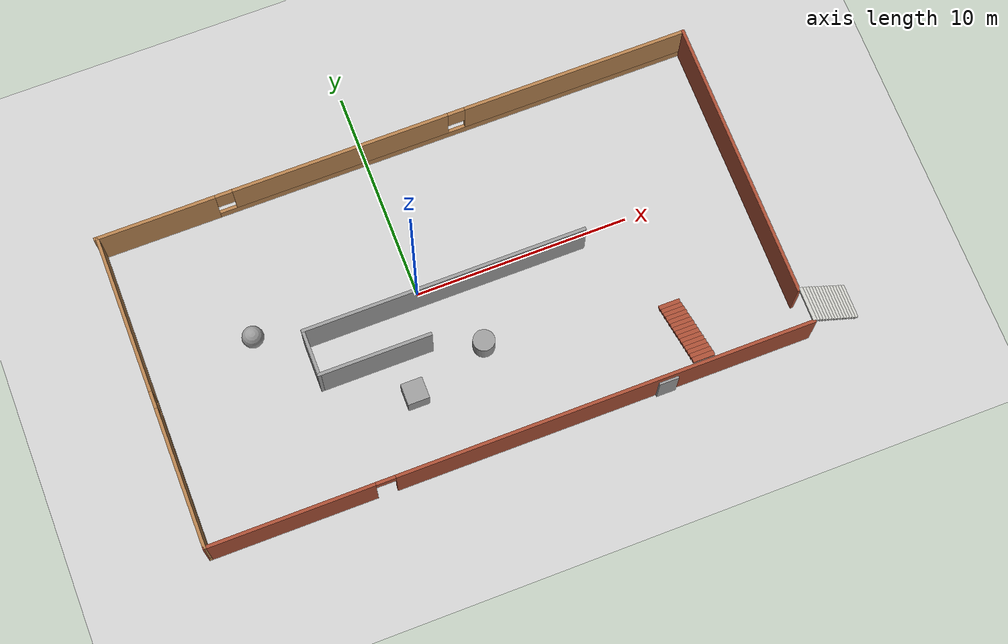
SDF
<sdf version="1.7">
 <world name="default">
  <light name="sun" type="directional">
   <pose>0 0 10 0 -0 0</pose>
   <diffuse>0.8 0.8 0.8 1</diffuse>
   <specular>0.2 0.2 0.2 1</specular>
   <attenuation>
    <range>1000</range>
    <constant>0.9</constant>
    <linear>0.01</linear>
    <quadratic>0.001</quadratic>
   </attenuation>
   <direction>-0.5 0.1 -0.9</direction>
   <spot><inner_angle>0</inner_angle><outer_angle>0</outer_angle><falloff>0</falloff></spot>
  </light>
  <model name="ground_plane">
   <static>1</static>
   <link name="link">
    <collision name="collision">
     <geometry><plane><normal>0 0 1</normal><size>100 100</size></plane></geometry>
     <surface><friction><ode><mu>100</mu><mu2>50</mu2></ode></friction></surface>
    </collision>
    <visual name="visual">
     <cast_shadows>0</cast_shadows>
     <geometry><plane><normal>0 0 1</normal><size>100 100</size></plane></geometry>
     <material>
      <script><uri>file://media/materials/scripts/gazebo.material</uri><name>Gazebo/Grey</name></script>
     </material>
    </visual>
   </link>
  </model>
  <gravity>0 0 -9.8</gravity>
  <magnetic_field>6e-06 2.3e-05 -4.2e-05</magnetic_field>
  <atmosphere type="adiabatic"/>
  <physics type="ode">
   <max_step_size>0.001</max_step_size>
   <real_time_factor>1</real_time_factor>
   <real_time_update_rate>1000</real_time_update_rate>
  </physics>
  <scene><ambient>0.4 0.4 0.4 1</ambient><background>0.7 0.7 0.7 1</background><shadows>1</shadows></scene>
  <spherical_coordinates>
   <surface_model>EARTH_WGS84</surface_model>
   <latitude_deg>0</latitude_deg>
   <longitude_deg>0</longitude_deg>
   <elevation>0</elevation>
   <heading_deg>0</heading_deg>
  </spherical_coordinates>
  <model name="unit_cylinder_0">
   <pose>1.90611 -3.30033 0.499998 3e-06 4e-06 -0</pose>
   <link name="link">
    <inertial>
     <mass>1</mass>
     <inertia><ixx>0.145833</ixx><ixy>0</ixy><ixz>0</ixz><iyy>0.145833</iyy><iyz>0</iyz><izz>0.125</izz></inertia>
    </inertial>
    <collision name="collision">
     <geometry><cylinder><radius>0.5</radius><length>1</length></cylinder></geometry>
    </collision>
    <visual name="visual">
     <geometry><cylinder><radius>0.5</radius><length>1</length></cylinder></geometry>
     <material>
      <script><name>Gazebo/Grey</name><uri>file://media/materials/scripts/gazebo.material</uri></script>
     </material>
    </visual>
   </link>
  </model>
  <model name="unit_box_0">
   <pose>-1.71732 -4.38026 0.499995 1e-05 -0 0</pose>
   <link name="link">
    <inertial>
     <mass>1</mass>
     <inertia>
      <ixx>0.166667</ixx>
      <ixy>0</ixy>
      <ixz>0</ixz>
      <iyy>0.166667</iyy>
      <iyz>0</iyz>
      <izz>0.166667</izz>
     </inertia>
    </inertial>
    <collision name="collision"><geometry><box><size>1 1 1</size></box></geometry></collision>
    <visual name="visual">
     <geometry><box><size>1 1 1</size></box></geometry>
     <material>
      <script><name>Gazebo/Grey</name><uri>file://media/materials/scripts/gazebo.material</uri></script>
     </material>
    </visual>
   </link>
  </model>
  <model name="unit_sphere">
   <pose>-7.51234 0.599408 0.5 0 -0 0</pose>
   <link name="link">
    <inertial>
     <mass>1</mass>
     <inertia><ixx>0.1</ixx><ixy>0</ixy><ixz>0</ixz><iyy>0.1</iyy><iyz>0</iyz><izz>0.1</izz></inertia>
    </inertial>
    <collision name="collision"><geometry><sphere><radius>0.5</radius></sphere></geometry></collision>
    <visual name="visual">
     <geometry><sphere><radius>0.5</radius></sphere></geometry>
     <material>
      <script><name>Gazebo/Grey</name><uri>file://media/materials/scripts/gazebo.material</uri></script>
     </material>
    </visual>
   </link>
  </model>
  <light name="user_spot_light_0" type="spot">
   <pose>-110.267 38.8044 1 0 -0 0</pose>
   <diffuse>0.5 0.5 0.5 1</diffuse>
   <specular>0.1 0.1 0.1 1</specular>
   <direction>0 0 -1</direction>
   <attenuation>
    <range>20</range>
    <constant>0.5</constant>
    <linear>0.01</linear>
    <quadratic>0.001</quadratic>
   </attenuation>
   <cast_shadows>0</cast_shadows>
   <spot><inner_angle>0.6</inner_angle><outer_angle>1</outer_angle><falloff>1</falloff></spot>
  </light>
  <light name="user_spot_light_1" type="spot">
   <pose>-17.8773 14.4133 1 0 -0 0</pose>
   <diffuse>0.5 0.5 0.5 1</diffuse>
   <specular>0.1 0.1 0.1 1</specular>
   <direction>0 0 -1</direction>
   <attenuation>
    <range>20</range>
    <constant>0.5</constant>
    <linear>0.01</linear>
    <quadratic>0.001</quadratic>
   </attenuation>
   <cast_shadows>0</cast_shadows>
   <spot><inner_angle>0.6</inner_angle><outer_angle>1</outer_angle><falloff>1</falloff></spot>
  </light>
  <model name="Untitled">
   <pose>1.13 -1.3475 0 0 -0 0</pose>
   <link name="Wall_0">
    <collision name="Wall_0_Collision">
     <geometry><box><size>5.25 0.15 2.5</size></box></geometry>
     <pose>0 0 1.25 0 -0 0</pose>
    </collision>
    <visual name="Wall_0_Visual">
     <pose>0 0 1.25 0 -0 0</pose>
     <geometry><box><size>5.25 0.15 2.5</size></box></geometry>
     <material>
      <script><uri>file://media/materials/scripts/gazebo.material</uri><name>Gazebo/Grey</name></script>
      <ambient>1 1 1 1</ambient>
     </material>
     <meta><layer>0</layer></meta>
    </visual>
    <pose>-4 -1.2725 0 0 -0 3.14159</pose>
   </link>
   <link name="Wall_1">
    <collision name="Wall_1_Collision">
     <geometry><box><size>2.25 0.15 2.5</size></box></geometry>
     <pose>0 0 1.25 0 -0 0</pose>
    </collision>
    <visual name="Wall_1_Visual">
     <pose>0 0 1.25 0 -0 0</pose>
     <geometry><box><size>2.25 0.15 2.5</size></box></geometry>
     <material>
      <script><uri>file://media/materials/scripts/gazebo.material</uri><name>Gazebo/Grey</name></script>
      <ambient>1 1 1 1</ambient>
     </material>
     <meta><layer>0</layer></meta>
    </visual>
    <pose>-6.55 -0.2225 0 0 -0 1.5708</pose>
   </link>
   <link name="Wall_2">
    <collision name="Wall_2_Collision">
     <geometry><box><size>13.25 0.15 2.5</size></box></geometry>
     <pose>0 0 1.25 0 -0 0</pose>
    </collision>
    <visual name="Wall_2_Visual">
     <pose>0 0 1.25 0 -0 0</pose>
     <geometry><box><size>13.25 0.15 2.5</size></box></geometry>
     <material>
      <script><uri>file://media/materials/scripts/gazebo.material</uri><name>Gazebo/Grey</name></script>
      <ambient>1 1 1 1</ambient>
     </material>
     <meta><layer>0</layer></meta>
    </visual>
    <pose>0 0.8275 0 0 -0 0</pose>
   </link>
   <static>1</static>
  </model>
  <model name="Untitled_0">
   <pose>2.66725 -0.66294 0 0 -0 0</pose>
   <link name="Door_1">
    <collision name="Door_1_Collision">
     <geometry><box><size>0.9 0.17 2</size></box></geometry>
     <pose>0 0 1 0 -0 0</pose>
    </collision>
    <visual name="Door_1_Visual">
     <pose>0 0 1 0 -0 0</pose>
     <geometry><box><size>0.9 0.17 2</size></box></geometry>
     <material>
      <script><uri>file://media/materials/scripts/gazebo.material</uri><name>Gazebo/Grey</name></script>
     </material>
    </visual>
    <pose>5.95571 -7.41153 0 0 -0 0</pose>
   </link>
   <link name="Stairs_0">
    <visual name="Stairs_0_Visual_0">
     <pose>7.64009 -3.8131 0.083333 0 -0 0</pose>
     <geometry><box><size>1 0.233333 0.166667</size></box></geometry>
     <material>
      <script><uri>file://media/materials/scripts/gazebo.material</uri><name>Gazebo/Bricks</name></script>
      <ambient>1 1 1 1</ambient>
     </material>
     <meta><layer>0</layer></meta>
    </visual>
    <collision name="Stairs_0_Collision_0">
     <geometry><box><size>1 0.233333 0.166667</size></box></geometry>
     <pose>7.64009 -3.8131 0.083333 0 -0 0</pose>
    </collision>
    <visual name="Stairs_0_Visual_1">
     <pose>7.64009 -4.04643 0.25 0 -0 0</pose>
     <geometry><box><size>1 0.233333 0.166667</size></box></geometry>
     <material>
      <script><uri>file://media/materials/scripts/gazebo.material</uri><name>Gazebo/Bricks</name></script>
      <ambient>1 1 1 1</ambient>
     </material>
     <meta><layer>0</layer></meta>
    </visual>
    <collision name="Stairs_0_Collision_1">
     <geometry><box><size>1 0.233333 0.166667</size></box></geometry>
     <pose>7.64009 -4.04643 0.25 0 -0 0</pose>
    </collision>
    <visual name="Stairs_0_Visual_2">
     <pose>7.64009 -4.27976 0.416667 0 -0 0</pose>
     <geometry><box><size>1 0.233333 0.166667</size></box></geometry>
     <material>
      <script><uri>file://media/materials/scripts/gazebo.material</uri><name>Gazebo/Bricks</name></script>
      <ambient>1 1 1 1</ambient>
     </material>
     <meta><layer>0</layer></meta>
    </visual>
    <collision name="Stairs_0_Collision_2">
     <geometry><box><size>1 0.233333 0.166667</size></box></geometry>
     <pose>7.64009 -4.27976 0.416667 0 -0 0</pose>
    </collision>
    <visual name="Stairs_0_Visual_3">
     <pose>7.64009 -4.51309 0.583333 0 -0 0</pose>
     <geometry><box><size>1 0.233333 0.166667</size></box></geometry>
     <material>
      <script><uri>file://media/materials/scripts/gazebo.material</uri><name>Gazebo/Bricks</name></script>
      <ambient>1 1 1 1</ambient>
     </material>
     <meta><layer>0</layer></meta>
    </visual>
    <collision name="Stairs_0_Collision_3">
     <geometry><box><size>1 0.233333 0.166667</size></box></geometry>
     <pose>7.64009 -4.51309 0.583333 0 -0 0</pose>
    </collision>
    <visual name="Stairs_0_Visual_4">
     <pose>7.64009 -4.74643 0.75 0 -0 0</pose>
     <geometry><box><size>1 0.233333 0.166667</size></box></geometry>
     <material>
      <script><uri>file://media/materials/scripts/gazebo.material</uri><name>Gazebo/Bricks</name></script>
      <ambient>1 1 1 1</ambient>
     </material>
     <meta><layer>0</layer></meta>
    </visual>
    <collision name="Stairs_0_Collision_4">
     <geometry><box><size>1 0.233333 0.166667</size></box></geometry>
     <pose>7.64009 -4.74643 0.75 0 -0 0</pose>
    </collision>
    <visual name="Stairs_0_Visual_5">
     <pose>7.64009 -4.97976 0.916667 0 -0 0</pose>
     <geometry><box><size>1 0.233333 0.166667</size></box></geometry>
     <material>
      <script><uri>file://media/materials/scripts/gazebo.material</uri><name>Gazebo/Bricks</name></script>
      <ambient>1 1 1 1</ambient>
     </material>
     <meta><layer>0</layer></meta>
    </visual>
    <collision name="Stairs_0_Collision_5">
     <geometry><box><size>1 0.233333 0.166667</size></box></geometry>
     <pose>7.64009 -4.97976 0.916667 0 -0 0</pose>
    </collision>
    <visual name="Stairs_0_Visual_6">
     <pose>7.64009 -5.2131 1.08333 0 -0 0</pose>
     <geometry><box><size>1 0.233333 0.166667</size></box></geometry>
     <material>
      <script><uri>file://media/materials/scripts/gazebo.material</uri><name>Gazebo/Bricks</name></script>
      <ambient>1 1 1 1</ambient>
     </material>
     <meta><layer>0</layer></meta>
    </visual>
    <collision name="Stairs_0_Collision_6">
     <geometry><box><size>1 0.233333 0.166667</size></box></geometry>
     <pose>7.64009 -5.2131 1.08333 0 -0 0</pose>
    </collision>
    <visual name="Stairs_0_Visual_7">
     <pose>7.64009 -5.44643 1.25 0 -0 0</pose>
     <geometry><box><size>1 0.233333 0.166667</size></box></geometry>
     <material>
      <script><uri>file://media/materials/scripts/gazebo.material</uri><name>Gazebo/Bricks</name></script>
      <ambient>1 1 1 1</ambient>
     </material>
     <meta><layer>0</layer></meta>
    </visual>
    <collision name="Stairs_0_Collision_7">
     <geometry><box><size>1 0.233333 0.166667</size></box></geometry>
     <pose>7.64009 -5.44643 1.25 0 -0 0</pose>
    </collision>
    <visual name="Stairs_0_Visual_8">
     <pose>7.64009 -5.67976 1.41667 0 -0 0</pose>
     <geometry><box><size>1 0.233333 0.166667</size></box></geometry>
     <material>
      <script><uri>file://media/materials/scripts/gazebo.material</uri><name>Gazebo/Bricks</name></script>
      <ambient>1 1 1 1</ambient>
     </material>
     <meta><layer>0</layer></meta>
    </visual>
    <collision name="Stairs_0_Collision_8">
     <geometry><box><size>1 0.233333 0.166667</size></box></geometry>
     <pose>7.64009 -5.67976 1.41667 0 -0 0</pose>
    </collision>
    <visual name="Stairs_0_Visual_9">
     <pose>7.64009 -5.9131 1.58333 0 -0 0</pose>
     <geometry><box><size>1 0.233333 0.166667</size></box></geometry>
     <material>
      <script><uri>file://media/materials/scripts/gazebo.material</uri><name>Gazebo/Bricks</name></script>
      <ambient>1 1 1 1</ambient>
     </material>
     <meta><layer>0</layer></meta>
    </visual>
    <collision name="Stairs_0_Collision_9">
     <geometry><box><size>1 0.233333 0.166667</size></box></geometry>
     <pose>7.64009 -5.9131 1.58333 0 -0 0</pose>
    </collision>
    <visual name="Stairs_0_Visual_10">
     <pose>7.64009 -6.14643 1.75 0 -0 0</pose>
     <geometry><box><size>1 0.233333 0.166667</size></box></geometry>
     <material>
      <script><uri>file://media/materials/scripts/gazebo.material</uri><name>Gazebo/Bricks</name></script>
      <ambient>1 1 1 1</ambient>
     </material>
     <meta><layer>0</layer></meta>
    </visual>
    <collision name="Stairs_0_Collision_10">
     <geometry><box><size>1 0.233333 0.166667</size></box></geometry>
     <pose>7.64009 -6.14643 1.75 0 -0 0</pose>
    </collision>
    <visual name="Stairs_0_Visual_11">
     <pose>7.64009 -6.37976 1.91667 0 -0 0</pose>
     <geometry><box><size>1 0.233333 0.166667</size></box></geometry>
     <material>
      <script><uri>file://media/materials/scripts/gazebo.material</uri><name>Gazebo/Bricks</name></script>
      <ambient>1 1 1 1</ambient>
     </material>
     <meta><layer>0</layer></meta>
    </visual>
    <collision name="Stairs_0_Collision_11">
     <geometry><box><size>1 0.233333 0.166667</size></box></geometry>
     <pose>7.64009 -6.37976 1.91667 0 -0 0</pose>
    </collision>
    <visual name="Stairs_0_Visual_12">
     <pose>7.64009 -6.6131 2.08333 0 -0 0</pose>
     <geometry><box><size>1 0.233333 0.166667</size></box></geometry>
     <material>
      <script><uri>file://media/materials/scripts/gazebo.material</uri><name>Gazebo/Bricks</name></script>
      <ambient>1 1 1 1</ambient>
     </material>
     <meta><layer>0</layer></meta>
    </visual>
    <collision name="Stairs_0_Collision_12">
     <geometry><box><size>1 0.233333 0.166667</size></box></geometry>
     <pose>7.64009 -6.6131 2.08333 0 -0 0</pose>
    </collision>
    <visual name="Stairs_0_Visual_13">
     <pose>7.64009 -6.84643 2.25 0 -0 0</pose>
     <geometry><box><size>1 0.233333 0.166667</size></box></geometry>
     <material>
      <script><uri>file://media/materials/scripts/gazebo.material</uri><name>Gazebo/Bricks</name></script>
      <ambient>1 1 1 1</ambient>
     </material>
     <meta><layer>0</layer></meta>
    </visual>
    <collision name="Stairs_0_Collision_13">
     <geometry><box><size>1 0.233333 0.166667</size></box></geometry>
     <pose>7.64009 -6.84643 2.25 0 -0 0</pose>
    </collision>
    <visual name="Stairs_0_Visual_14">
     <pose>7.64009 -7.07976 2.41667 0 -0 0</pose>
     <geometry><box><size>1 0.233333 0.166667</size></box></geometry>
     <material>
      <script><uri>file://media/materials/scripts/gazebo.material</uri><name>Gazebo/Bricks</name></script>
      <ambient>1 1 1 1</ambient>
     </material>
     <meta><layer>0</layer></meta>
    </visual>
    <collision name="Stairs_0_Collision_14">
     <geometry><box><size>1 0.233333 0.166667</size></box></geometry>
     <pose>7.64009 -7.07976 2.41667 0 -0 0</pose>
    </collision>
   </link>
   <link name="Stairs_1">
    <visual name="Stairs_1_Visual_0">
     <pose>15.1613 -6.51672 0.083333 0 -0 -1.5708</pose>
     <geometry><box><size>1.58451 0.16907 0.166667</size></box></geometry>
     <material>
      <script><uri>file://media/materials/scripts/gazebo.material</uri><name>Gazebo/CeilingTiled</name></script>
      <ambient>1 1 1 1</ambient>
     </material>
     <meta><layer>0</layer></meta>
    </visual>
    <collision name="Stairs_1_Collision_0">
     <geometry><box><size>1.58451 0.16907 0.166667</size></box></geometry>
     <pose>15.1613 -6.51672 0.083333 0 -0 -1.5708</pose>
    </collision>
    <visual name="Stairs_1_Visual_1">
     <pose>14.9922 -6.51672 0.25 0 -0 -1.5708</pose>
     <geometry><box><size>1.58451 0.16907 0.166667</size></box></geometry>
     <material>
      <script><uri>file://media/materials/scripts/gazebo.material</uri><name>Gazebo/CeilingTiled</name></script>
      <ambient>1 1 1 1</ambient>
     </material>
     <meta><layer>0</layer></meta>
    </visual>
    <collision name="Stairs_1_Collision_1">
     <geometry><box><size>1.58451 0.16907 0.166667</size></box></geometry>
     <pose>14.9922 -6.51672 0.25 0 -0 -1.5708</pose>
    </collision>
    <visual name="Stairs_1_Visual_2">
     <pose>14.8231 -6.51672 0.416667 0 -0 -1.5708</pose>
     <geometry><box><size>1.58451 0.16907 0.166667</size></box></geometry>
     <material>
      <script><uri>file://media/materials/scripts/gazebo.material</uri><name>Gazebo/CeilingTiled</name></script>
      <ambient>1 1 1 1</ambient>
     </material>
     <meta><layer>0</layer></meta>
    </visual>
    <collision name="Stairs_1_Collision_2">
     <geometry><box><size>1.58451 0.16907 0.166667</size></box></geometry>
     <pose>14.8231 -6.51672 0.416667 0 -0 -1.5708</pose>
    </collision>
    <visual name="Stairs_1_Visual_3">
     <pose>14.6541 -6.51672 0.583333 0 -0 -1.5708</pose>
     <geometry><box><size>1.58451 0.16907 0.166667</size></box></geometry>
     <material>
      <script><uri>file://media/materials/scripts/gazebo.material</uri><name>Gazebo/CeilingTiled</name></script>
      <ambient>1 1 1 1</ambient>
     </material>
     <meta><layer>0</layer></meta>
    </visual>
    <collision name="Stairs_1_Collision_3">
     <geometry><box><size>1.58451 0.16907 0.166667</size></box></geometry>
     <pose>14.6541 -6.51672 0.583333 0 -0 -1.5708</pose>
    </collision>
    <visual name="Stairs_1_Visual_4">
     <pose>14.485 -6.51672 0.75 0 -0 -1.5708</pose>
     <geometry><box><size>1.58451 0.16907 0.166667</size></box></geometry>
     <material>
      <script><uri>file://media/materials/scripts/gazebo.material</uri><name>Gazebo/CeilingTiled</name></script>
      <ambient>1 1 1 1</ambient>
     </material>
     <meta><layer>0</layer></meta>
    </visual>
    <collision name="Stairs_1_Collision_4">
     <geometry><box><size>1.58451 0.16907 0.166667</size></box></geometry>
     <pose>14.485 -6.51672 0.75 0 -0 -1.5708</pose>
    </collision>
    <visual name="Stairs_1_Visual_5">
     <pose>14.3159 -6.51672 0.916667 0 -0 -1.5708</pose>
     <geometry><box><size>1.58451 0.16907 0.166667</size></box></geometry>
     <material>
      <script><uri>file://media/materials/scripts/gazebo.material</uri><name>Gazebo/CeilingTiled</name></script>
      <ambient>1 1 1 1</ambient>
     </material>
     <meta><layer>0</layer></meta>
    </visual>
    <collision name="Stairs_1_Collision_5">
     <geometry><box><size>1.58451 0.16907 0.166667</size></box></geometry>
     <pose>14.3159 -6.51672 0.916667 0 -0 -1.5708</pose>
    </collision>
    <visual name="Stairs_1_Visual_6">
     <pose>14.1468 -6.51672 1.08333 0 -0 -1.5708</pose>
     <geometry><box><size>1.58451 0.16907 0.166667</size></box></geometry>
     <material>
      <script><uri>file://media/materials/scripts/gazebo.material</uri><name>Gazebo/CeilingTiled</name></script>
      <ambient>1 1 1 1</ambient>
     </material>
     <meta><layer>0</layer></meta>
    </visual>
    <collision name="Stairs_1_Collision_6">
     <geometry><box><size>1.58451 0.16907 0.166667</size></box></geometry>
     <pose>14.1468 -6.51672 1.08333 0 -0 -1.5708</pose>
    </collision>
    <visual name="Stairs_1_Visual_7">
     <pose>13.9778 -6.51672 1.25 0 -0 -1.5708</pose>
     <geometry><box><size>1.58451 0.16907 0.166667</size></box></geometry>
     <material>
      <script><uri>file://media/materials/scripts/gazebo.material</uri><name>Gazebo/CeilingTiled</name></script>
      <ambient>1 1 1 1</ambient>
     </material>
     <meta><layer>0</layer></meta>
    </visual>
    <collision name="Stairs_1_Collision_7">
     <geometry><box><size>1.58451 0.16907 0.166667</size></box></geometry>
     <pose>13.9778 -6.51672 1.25 0 -0 -1.5708</pose>
    </collision>
    <visual name="Stairs_1_Visual_8">
     <pose>13.8087 -6.51672 1.41667 0 -0 -1.5708</pose>
     <geometry><box><size>1.58451 0.16907 0.166667</size></box></geometry>
     <material>
      <script><uri>file://media/materials/scripts/gazebo.material</uri><name>Gazebo/CeilingTiled</name></script>
      <ambient>1 1 1 1</ambient>
     </material>
     <meta><layer>0</layer></meta>
    </visual>
    <collision name="Stairs_1_Collision_8">
     <geometry><box><size>1.58451 0.16907 0.166667</size></box></geometry>
     <pose>13.8087 -6.51672 1.41667 0 -0 -1.5708</pose>
    </collision>
    <visual name="Stairs_1_Visual_9">
     <pose>13.6396 -6.51672 1.58333 0 -0 -1.5708</pose>
     <geometry><box><size>1.58451 0.16907 0.166667</size></box></geometry>
     <material>
      <script><uri>file://media/materials/scripts/gazebo.material</uri><name>Gazebo/CeilingTiled</name></script>
      <ambient>1 1 1 1</ambient>
     </material>
     <meta><layer>0</layer></meta>
    </visual>
    <collision name="Stairs_1_Collision_9">
     <geometry><box><size>1.58451 0.16907 0.166667</size></box></geometry>
     <pose>13.6396 -6.51672 1.58333 0 -0 -1.5708</pose>
    </collision>
    <visual name="Stairs_1_Visual_10">
     <pose>13.4706 -6.51672 1.75 0 -0 -1.5708</pose>
     <geometry><box><size>1.58451 0.16907 0.166667</size></box></geometry>
     <material>
      <script><uri>file://media/materials/scripts/gazebo.material</uri><name>Gazebo/CeilingTiled</name></script>
      <ambient>1 1 1 1</ambient>
     </material>
     <meta><layer>0</layer></meta>
    </visual>
    <collision name="Stairs_1_Collision_10">
     <geometry><box><size>1.58451 0.16907 0.166667</size></box></geometry>
     <pose>13.4706 -6.51672 1.75 0 -0 -1.5708</pose>
    </collision>
    <visual name="Stairs_1_Visual_11">
     <pose>13.3015 -6.51672 1.91667 0 -0 -1.5708</pose>
     <geometry><box><size>1.58451 0.16907 0.166667</size></box></geometry>
     <material>
      <script><uri>file://media/materials/scripts/gazebo.material</uri><name>Gazebo/CeilingTiled</name></script>
      <ambient>1 1 1 1</ambient>
     </material>
     <meta><layer>0</layer></meta>
    </visual>
    <collision name="Stairs_1_Collision_11">
     <geometry><box><size>1.58451 0.16907 0.166667</size></box></geometry>
     <pose>13.3015 -6.51672 1.91667 0 -0 -1.5708</pose>
    </collision>
    <visual name="Stairs_1_Visual_12">
     <pose>13.1324 -6.51672 2.08333 0 -0 -1.5708</pose>
     <geometry><box><size>1.58451 0.16907 0.166667</size></box></geometry>
     <material>
      <script><uri>file://media/materials/scripts/gazebo.material</uri><name>Gazebo/CeilingTiled</name></script>
      <ambient>1 1 1 1</ambient>
     </material>
     <meta><layer>0</layer></meta>
    </visual>
    <collision name="Stairs_1_Collision_12">
     <geometry><box><size>1.58451 0.16907 0.166667</size></box></geometry>
     <pose>13.1324 -6.51672 2.08333 0 -0 -1.5708</pose>
    </collision>
    <visual name="Stairs_1_Visual_13">
     <pose>12.9634 -6.51672 2.25 0 -0 -1.5708</pose>
     <geometry><box><size>1.58451 0.16907 0.166667</size></box></geometry>
     <material>
      <script><uri>file://media/materials/scripts/gazebo.material</uri><name>Gazebo/CeilingTiled</name></script>
      <ambient>1 1 1 1</ambient>
     </material>
     <meta><layer>0</layer></meta>
    </visual>
    <collision name="Stairs_1_Collision_13">
     <geometry><box><size>1.58451 0.16907 0.166667</size></box></geometry>
     <pose>12.9634 -6.51672 2.25 0 -0 -1.5708</pose>
    </collision>
    <visual name="Stairs_1_Visual_14">
     <pose>12.7943 -6.51672 2.41667 0 -0 -1.5708</pose>
     <geometry><box><size>1.58451 0.16907 0.166667</size></box></geometry>
     <material>
      <script><uri>file://media/materials/scripts/gazebo.material</uri><name>Gazebo/CeilingTiled</name></script>
      <ambient>1 1 1 1</ambient>
     </material>
     <meta><layer>0</layer></meta>
    </visual>
    <collision name="Stairs_1_Collision_14">
     <geometry><box><size>1.58451 0.16907 0.166667</size></box></geometry>
     <pose>12.7943 -6.51672 2.41667 0 -0 -1.5708</pose>
    </collision>
   </link>
   <link name="Wall_0">
    <pose>-1.2458 7.32513 0 0 -0 0</pose>
    <visual name="Wall_0_Visual_0">
     <pose>-11.2023 0 1.25 0 -0 0</pose>
     <geometry><box><size>5.59538 0.15 2.5</size></box></geometry>
     <material>
      <script><uri>file://media/materials/scripts/gazebo.material</uri><name>Gazebo/Wood</name></script>
      <ambient>1 1 1 1</ambient>
     </material>
     <meta><layer>0</layer></meta>
    </visual>
    <collision name="Wall_0_Collision_0">
     <geometry><box><size>5.59538 0.15 2.5</size></box></geometry>
     <pose>-11.2023 0 1.25 0 -0 0</pose>
    </collision>
    <visual name="Wall_0_Visual_1">
     <pose>2.79769 0 0.25 0 -0 0</pose>
     <geometry><box><size>22.4046 0.15 0.5</size></box></geometry>
     <material>
      <script><uri>file://media/materials/scripts/gazebo.material</uri><name>Gazebo/Wood</name></script>
      <ambient>1 1 1 1</ambient>
     </material>
     <meta><layer>0</layer></meta>
    </visual>
    <collision name="Wall_0_Collision_1">
     <geometry><box><size>22.4046 0.15 0.5</size></box></geometry>
     <pose>2.79769 0 0.25 0 -0 0</pose>
    </collision>
    <visual name="Wall_0_Visual_2">
     <pose>-2.53041 0 1.5 0 -0 0</pose>
     <geometry><box><size>10.1484 0.15 2</size></box></geometry>
     <material>
      <script><uri>file://media/materials/scripts/gazebo.material</uri><name>Gazebo/Wood</name></script>
      <ambient>1 1 1 1</ambient>
     </material>
     <meta><layer>0</layer></meta>
    </visual>
    <collision name="Wall_0_Collision_2">
     <geometry><box><size>10.1484 0.15 2</size></box></geometry>
     <pose>-2.53041 0 1.5 0 -0 0</pose>
    </collision>
    <visual name="Wall_0_Visual_3">
     <pose>8.6719 0 1.5 0 -0 0</pose>
     <geometry><box><size>10.6562 0.15 2</size></box></geometry>
     <material>
      <script><uri>file://media/materials/scripts/gazebo.material</uri><name>Gazebo/Wood</name></script>
      <ambient>1 1 1 1</ambient>
     </material>
     <meta><layer>0</layer></meta>
    </visual>
    <collision name="Wall_0_Collision_3">
     <geometry><box><size>10.6562 0.15 2</size></box></geometry>
     <pose>8.6719 0 1.5 0 -0 0</pose>
    </collision>
    <visual name="Wall_0_Visual_4">
     <pose>-8.00462 0 1.9 0 -0 0</pose>
     <geometry><box><size>0.8 0.15 1.2</size></box></geometry>
     <material>
      <script><uri>file://media/materials/scripts/gazebo.material</uri><name>Gazebo/Wood</name></script>
      <ambient>1 1 1 1</ambient>
     </material>
     <meta><layer>0</layer></meta>
    </visual>
    <collision name="Wall_0_Collision_4">
     <geometry><box><size>0.8 0.15 1.2</size></box></geometry>
     <pose>-8.00462 0 1.9 0 -0 0</pose>
    </collision>
    <visual name="Wall_0_Visual_5">
     <pose>2.9438 0 1.9 0 -0 0</pose>
     <geometry><box><size>0.8 0.15 1.2</size></box></geometry>
     <material>
      <script><uri>file://media/materials/scripts/gazebo.material</uri><name>Gazebo/Wood</name></script>
      <ambient>1 1 1 1</ambient>
     </material>
     <meta><layer>0</layer></meta>
    </visual>
    <collision name="Wall_0_Collision_5">
     <geometry><box><size>0.8 0.15 1.2</size></box></geometry>
     <pose>2.9438 0 1.9 0 -0 0</pose>
    </collision>
   </link>
   <link name="Wall_1">
    <collision name="Wall_1_Collision">
     <geometry><box><size>13.25 0.15 2.5</size></box></geometry>
     <pose>0 0 1.25 0 -0 0</pose>
    </collision>
    <visual name="Wall_1_Visual">
     <pose>0 0 1.25 0 -0 0</pose>
     <geometry><box><size>13.25 0.15 2.5</size></box></geometry>
     <material>
      <script><uri>file://media/materials/scripts/gazebo.material</uri><name>Gazebo/Bricks</name></script>
      <ambient>1 1 1 1</ambient>
     </material>
     <meta><layer>0</layer></meta>
    </visual>
    <pose>12.6792 0.775129 0 0 -0 -1.5708</pose>
   </link>
   <link name="Wall_6">
    <pose>-15.0956 -0.02513 0 0 -0 -1.5708</pose>
    <visual name="Wall_6_Visual_0">
     <pose>-3.65662 0 1.25 0 -0 0</pose>
     <geometry><box><size>7.43676 0.15 2.5</size></box></geometry>
     <material>
      <script><uri>file://media/materials/scripts/gazebo.material</uri><name>Gazebo/Wood</name></script>
      <ambient>1 1 1 1</ambient>
     </material>
     <meta><layer>0</layer></meta>
    </visual>
    <collision name="Wall_6_Collision_0">
     <geometry><box><size>7.43676 0.15 2.5</size></box></geometry>
     <pose>-3.65662 0 1.25 0 -0 0</pose>
    </collision>
    <visual name="Wall_6_Visual_1">
     <pose>3.71838 0 0.25 0 -0 0</pose>
     <geometry><box><size>7.31324 0.15 0.5</size></box></geometry>
     <material>
      <script><uri>file://media/materials/scripts/gazebo.material</uri><name>Gazebo/Wood</name></script>
      <ambient>1 1 1 1</ambient>
     </material>
     <meta><layer>0</layer></meta>
    </visual>
    <collision name="Wall_6_Collision_1">
     <geometry><box><size>7.31324 0.15 0.5</size></box></geometry>
     <pose>3.71838 0 0.25 0 -0 0</pose>
    </collision>
    <visual name="Wall_6_Visual_2">
     <pose>4.11838 0 1.5 0 -0 0</pose>
     <geometry><box><size>6.51324 0.15 2</size></box></geometry>
     <material>
      <script><uri>file://media/materials/scripts/gazebo.material</uri><name>Gazebo/Wood</name></script>
      <ambient>1 1 1 1</ambient>
     </material>
     <meta><layer>0</layer></meta>
    </visual>
    <collision name="Wall_6_Collision_2">
     <geometry><box><size>6.51324 0.15 2</size></box></geometry>
     <pose>4.11838 0 1.5 0 -0 0</pose>
    </collision>
    <visual name="Wall_6_Visual_3">
     <pose>0.46176 0 1.9 0 -0 0</pose>
     <geometry><box><size>0.8 0.15 1.2</size></box></geometry>
     <material>
      <script><uri>file://media/materials/scripts/gazebo.material</uri><name>Gazebo/Wood</name></script>
      <ambient>1 1 1 1</ambient>
     </material>
     <meta><layer>0</layer></meta>
    </visual>
    <collision name="Wall_6_Collision_3">
     <geometry><box><size>0.8 0.15 1.2</size></box></geometry>
     <pose>0.46176 0 1.9 0 -0 0</pose>
    </collision>
   </link>
   <link name="Wall_7">
    <pose>-1.17058 -7.32513 0 0 -0 0</pose>
    <visual name="Wall_7_Visual_0">
     <pose>-10.142 0 1.25 0 -0 0</pose>
     <geometry><box><size>7.716 0.15 2.5</size></box></geometry>
     <material>
      <script><uri>file://media/materials/scripts/gazebo.material</uri><name>Gazebo/Bricks</name></script>
      <ambient>1 1 1 1</ambient>
     </material>
     <meta><layer>0</layer></meta>
    </visual>
    <collision name="Wall_7_Collision_0">
     <geometry><box><size>7.716 0.15 2.5</size></box></geometry>
     <pose>-10.142 0 1.25 0 -0 0</pose>
    </collision>
    <visual name="Wall_7_Visual_1">
     <pose>4.308 0 1.25 0 -0 0</pose>
     <geometry><box><size>19.384 0.15 2.5</size></box></geometry>
     <material>
      <script><uri>file://media/materials/scripts/gazebo.material</uri><name>Gazebo/Bricks</name></script>
      <ambient>1 1 1 1</ambient>
     </material>
     <meta><layer>0</layer></meta>
    </visual>
    <collision name="Wall_7_Collision_1">
     <geometry><box><size>19.384 0.15 2.5</size></box></geometry>
     <pose>4.308 0 1.25 0 -0 0</pose>
    </collision>
    <visual name="Wall_7_Visual_2">
     <pose>-5.834 0 2.25 0 -0 0</pose>
     <geometry><box><size>0.9 0.15 0.5</size></box></geometry>
     <material>
      <script><uri>file://media/materials/scripts/gazebo.material</uri><name>Gazebo/Bricks</name></script>
      <ambient>1 1 1 1</ambient>
     </material>
     <meta><layer>0</layer></meta>
    </visual>
    <collision name="Wall_7_Collision_2">
     <geometry><box><size>0.9 0.15 0.5</size></box></geometry>
     <pose>-5.834 0 2.25 0 -0 0</pose>
    </collision>
   </link>
   <static>1</static>
  </model>
  <pose>0.64249 -2.46286 0 0 -0 0</pose>
  <link name="Stairs_0">
   <visual name="Stairs_0_Visual_0">
    <pose>6.96968 1.35686 0.083333 0 -0 -1.5708</pose>
    <geometry><box><size>1.09 0.136667 0.166667</size></box></geometry>
    <material>
     <script><uri>file://media/materials/scripts/gazebo.material</uri><name>Gazebo/CeilingTiled</name></script>
     <ambient>1 1 1 1</ambient>
    </material>
    <meta><layer>0</layer></meta>
   </visual>
   <collision name="Stairs_0_Collision_0">
    <geometry><box><size>1.09 0.136667 0.166667</size></box></geometry>
    <pose>6.96968 1.35686 0.083333 0 -0 -1.5708</pose>
   </collision>
   <visual name="Stairs_0_Visual_1">
    <pose>6.83301 1.35686 0.25 0 -0 -1.5708</pose>
    <geometry><box><size>1.09 0.136667 0.166667</size></box></geometry>
    <material>
     <script><uri>file://media/materials/scripts/gazebo.material</uri><name>Gazebo/CeilingTiled</name></script>
     <ambient>1 1 1 1</ambient>
    </material>
    <meta><layer>0</layer></meta>
   </visual>
   <collision name="Stairs_0_Collision_1">
    <geometry><box><size>1.09 0.136667 0.166667</size></box></geometry>
    <pose>6.83301 1.35686 0.25 0 -0 -1.5708</pose>
   </collision>
   <visual name="Stairs_0_Visual_2">
    <pose>6.69634 1.35686 0.416667 0 -0 -1.5708</pose>
    <geometry><box><size>1.09 0.136667 0.166667</size></box></geometry>
    <material>
     <script><uri>file://media/materials/scripts/gazebo.material</uri><name>Gazebo/CeilingTiled</name></script>
     <ambient>1 1 1 1</ambient>
    </material>
    <meta><layer>0</layer></meta>
   </visual>
   <collision name="Stairs_0_Collision_2">
    <geometry><box><size>1.09 0.136667 0.166667</size></box></geometry>
    <pose>6.69634 1.35686 0.416667 0 -0 -1.5708</pose>
   </collision>
   <visual name="Stairs_0_Visual_3">
    <pose>6.55968 1.35686 0.583333 0 -0 -1.5708</pose>
    <geometry><box><size>1.09 0.136667 0.166667</size></box></geometry>
    <material>
     <script><uri>file://media/materials/scripts/gazebo.material</uri><name>Gazebo/CeilingTiled</name></script>
     <ambient>1 1 1 1</ambient>
    </material>
    <meta><layer>0</layer></meta>
   </visual>
   <collision name="Stairs_0_Collision_3">
    <geometry><box><size>1.09 0.136667 0.166667</size></box></geometry>
    <pose>6.55968 1.35686 0.583333 0 -0 -1.5708</pose>
   </collision>
   <visual name="Stairs_0_Visual_4">
    <pose>6.42301 1.35686 0.75 0 -0 -1.5708</pose>
    <geometry><box><size>1.09 0.136667 0.166667</size></box></geometry>
    <material>
     <script><uri>file://media/materials/scripts/gazebo.material</uri><name>Gazebo/CeilingTiled</name></script>
     <ambient>1 1 1 1</ambient>
    </material>
    <meta><layer>0</layer></meta>
   </visual>
   <collision name="Stairs_0_Collision_4">
    <geometry><box><size>1.09 0.136667 0.166667</size></box></geometry>
    <pose>6.42301 1.35686 0.75 0 -0 -1.5708</pose>
   </collision>
   <visual name="Stairs_0_Visual_5">
    <pose>6.28634 1.35686 0.916667 0 -0 -1.5708</pose>
    <geometry><box><size>1.09 0.136667 0.166667</size></box></geometry>
    <material>
     <script><uri>file://media/materials/scripts/gazebo.material</uri><name>Gazebo/CeilingTiled</name></script>
     <ambient>1 1 1 1</ambient>
    </material>
    <meta><layer>0</layer></meta>
   </visual>
   <collision name="Stairs_0_Collision_5">
    <geometry><box><size>1.09 0.136667 0.166667</size></box></geometry>
    <pose>6.28634 1.35686 0.916667 0 -0 -1.5708</pose>
   </collision>
   <visual name="Stairs_0_Visual_6">
    <pose>6.14968 1.35686 1.08333 0 -0 -1.5708</pose>
    <geometry><box><size>1.09 0.136667 0.166667</size></box></geometry>
    <material>
     <script><uri>file://media/materials/scripts/gazebo.material</uri><name>Gazebo/CeilingTiled</name></script>
     <ambient>1 1 1 1</ambient>
    </material>
    <meta><layer>0</layer></meta>
   </visual>
   <collision name="Stairs_0_Collision_6">
    <geometry><box><size>1.09 0.136667 0.166667</size></box></geometry>
    <pose>6.14968 1.35686 1.08333 0 -0 -1.5708</pose>
   </collision>
   <visual name="Stairs_0_Visual_7">
    <pose>6.01301 1.35686 1.25 0 -0 -1.5708</pose>
    <geometry><box><size>1.09 0.136667 0.166667</size></box></geometry>
    <material>
     <script><uri>file://media/materials/scripts/gazebo.material</uri><name>Gazebo/CeilingTiled</name></script>
     <ambient>1 1 1 1</ambient>
    </material>
    <meta><layer>0</layer></meta>
   </visual>
   <collision name="Stairs_0_Collision_7">
    <geometry><box><size>1.09 0.136667 0.166667</size></box></geometry>
    <pose>6.01301 1.35686 1.25 0 -0 -1.5708</pose>
   </collision>
   <visual name="Stairs_0_Visual_8">
    <pose>5.87634 1.35686 1.41667 0 -0 -1.5708</pose>
    <geometry><box><size>1.09 0.136667 0.166667</size></box></geometry>
    <material>
     <script><uri>file://media/materials/scripts/gazebo.material</uri><name>Gazebo/CeilingTiled</name></script>
     <ambient>1 1 1 1</ambient>
    </material>
    <meta><layer>0</layer></meta>
   </visual>
   <collision name="Stairs_0_Collision_8">
    <geometry><box><size>1.09 0.136667 0.166667</size></box></geometry>
    <pose>5.87634 1.35686 1.41667 0 -0 -1.5708</pose>
   </collision>
   <visual name="Stairs_0_Visual_9">
    <pose>5.73968 1.35686 1.58333 0 -0 -1.5708</pose>
    <geometry><box><size>1.09 0.136667 0.166667</size></box></geometry>
    <material>
     <script><uri>file://media/materials/scripts/gazebo.material</uri><name>Gazebo/CeilingTiled</name></script>
     <ambient>1 1 1 1</ambient>
    </material>
    <meta><layer>0</layer></meta>
   </visual>
   <collision name="Stairs_0_Collision_9">
    <geometry><box><size>1.09 0.136667 0.166667</size></box></geometry>
    <pose>5.73968 1.35686 1.58333 0 -0 -1.5708</pose>
   </collision>
   <visual name="Stairs_0_Visual_10">
    <pose>5.60301 1.35686 1.75 0 -0 -1.5708</pose>
    <geometry><box><size>1.09 0.136667 0.166667</size></box></geometry>
    <material>
     <script><uri>file://media/materials/scripts/gazebo.material</uri><name>Gazebo/CeilingTiled</name></script>
     <ambient>1 1 1 1</ambient>
    </material>
    <meta><layer>0</layer></meta>
   </visual>
   <collision name="Stairs_0_Collision_10">
    <geometry><box><size>1.09 0.136667 0.166667</size></box></geometry>
    <pose>5.60301 1.35686 1.75 0 -0 -1.5708</pose>
   </collision>
   <visual name="Stairs_0_Visual_11">
    <pose>5.46634 1.35686 1.91667 0 -0 -1.5708</pose>
    <geometry><box><size>1.09 0.136667 0.166667</size></box></geometry>
    <material>
     <script><uri>file://media/materials/scripts/gazebo.material</uri><name>Gazebo/CeilingTiled</name></script>
     <ambient>1 1 1 1</ambient>
    </material>
    <meta><layer>0</layer></meta>
   </visual>
   <collision name="Stairs_0_Collision_11">
    <geometry><box><size>1.09 0.136667 0.166667</size></box></geometry>
    <pose>5.46634 1.35686 1.91667 0 -0 -1.5708</pose>
   </collision>
   <visual name="Stairs_0_Visual_12">
    <pose>5.32968 1.35686 2.08333 0 -0 -1.5708</pose>
    <geometry><box><size>1.09 0.136667 0.166667</size></box></geometry>
    <material>
     <script><uri>file://media/materials/scripts/gazebo.material</uri><name>Gazebo/CeilingTiled</name></script>
     <ambient>1 1 1 1</ambient>
    </material>
    <meta><layer>0</layer></meta>
   </visual>
   <collision name="Stairs_0_Collision_12">
    <geometry><box><size>1.09 0.136667 0.166667</size></box></geometry>
    <pose>5.32968 1.35686 2.08333 0 -0 -1.5708</pose>
   </collision>
   <visual name="Stairs_0_Visual_13">
    <pose>5.19301 1.35686 2.25 0 -0 -1.5708</pose>
    <geometry><box><size>1.09 0.136667 0.166667</size></box></geometry>
    <material>
     <script><uri>file://media/materials/scripts/gazebo.material</uri><name>Gazebo/CeilingTiled</name></script>
     <ambient>1 1 1 1</ambient>
    </material>
    <meta><layer>0</layer></meta>
   </visual>
   <collision name="Stairs_0_Collision_13">
    <geometry><box><size>1.09 0.136667 0.166667</size></box></geometry>
    <pose>5.19301 1.35686 2.25 0 -0 -1.5708</pose>
   </collision>
   <visual name="Stairs_0_Visual_14">
    <pose>5.05634 1.35686 2.41667 0 -0 -1.5708</pose>
    <geometry><box><size>1.09 0.136667 0.166667</size></box></geometry>
    <material>
     <script><uri>file://media/materials/scripts/gazebo.material</uri><name>Gazebo/CeilingTiled</name></script>
     <ambient>1 1 1 1</ambient>
    </material>
    <meta><layer>0</layer></meta>
   </visual>
   <collision name="Stairs_0_Collision_14">
    <geometry><box><size>1.09 0.136667 0.166667</size></box></geometry>
    <pose>5.05634 1.35686 2.41667 0 -0 -1.5708</pose>
   </collision>
  </link>
  <link name="Wall_0">
   <pose>-1.03749 1.93286 0 0 -0 3.14159</pose>
   <visual name="Wall_0_Visual_0">
    <pose>-5.02275 0 1.25 0 -0 0</pose>
    <geometry><box><size>1.9545 0.15 2.5</size></box></geometry>
    <material>
     <script><uri>file://media/materials/scripts/gazebo.material</uri><name>Gazebo/Wood</name></script>
     <ambient>1 1 1 1</ambient>
    </material>
    <meta><layer>0</layer></meta>
   </visual>
   <collision name="Wall_0_Collision_0">
    <geometry><box><size>1.9545 0.15 2.5</size></box></geometry>
    <pose>-5.02275 0 1.25 0 -0 0</pose>
   </collision>
   <visual name="Wall_0_Visual_1">
    <pose>-1.5555 0 1.25 0 -0 0</pose>
    <geometry><box><size>3.18 0.15 2.5</size></box></geometry>
    <material>
     <script><uri>file://media/materials/scripts/gazebo.material</uri><name>Gazebo/Wood</name></script>
     <ambient>1 1 1 1</ambient>
    </material>
    <meta><layer>0</layer></meta>
   </visual>
   <collision name="Wall_0_Collision_1">
    <geometry><box><size>3.18 0.15 2.5</size></box></geometry>
    <pose>-1.5555 0 1.25 0 -0 0</pose>
   </collision>
   <visual name="Wall_0_Visual_2">
    <pose>3.01725 0 0.25 0 -0 0</pose>
    <geometry><box><size>5.9655 0.15 0.5</size></box></geometry>
    <material>
     <script><uri>file://media/materials/scripts/gazebo.material</uri><name>Gazebo/Wood</name></script>
     <ambient>1 1 1 1</ambient>
    </material>
    <meta><layer>0</layer></meta>
   </visual>
   <collision name="Wall_0_Collision_2">
    <geometry><box><size>5.9655 0.15 0.5</size></box></geometry>
    <pose>3.01725 0 0.25 0 -0 0</pose>
   </collision>
   <visual name="Wall_0_Visual_3">
    <pose>2.3745 0 1.5 0 -0 0</pose>
    <geometry><box><size>3.08 0.15 2</size></box></geometry>
    <material>
     <script><uri>file://media/materials/scripts/gazebo.material</uri><name>Gazebo/Wood</name></script>
     <ambient>1 1 1 1</ambient>
    </material>
    <meta><layer>0</layer></meta>
   </visual>
   <collision name="Wall_0_Collision_3">
    <geometry><box><size>3.08 0.15 2</size></box></geometry>
    <pose>2.3745 0 1.5 0 -0 0</pose>
   </collision>
   <visual name="Wall_0_Visual_4">
    <pose>5.35725 0 1.5 0 -0 0</pose>
    <geometry><box><size>1.2855 0.15 2</size></box></geometry>
    <material>
     <script><uri>file://media/materials/scripts/gazebo.material</uri><name>Gazebo/Wood</name></script>
     <ambient>1 1 1 1</ambient>
    </material>
    <meta><layer>0</layer></meta>
   </visual>
   <collision name="Wall_0_Collision_4">
    <geometry><box><size>1.2855 0.15 2</size></box></geometry>
    <pose>5.35725 0 1.5 0 -0 0</pose>
   </collision>
   <visual name="Wall_0_Visual_5">
    <pose>0.4345 0 1.9 0 -0 0</pose>
    <geometry><box><size>0.8 0.15 1.2</size></box></geometry>
    <material>
     <script><uri>file://media/materials/scripts/gazebo.material</uri><name>Gazebo/Wood</name></script>
     <ambient>1 1 1 1</ambient>
    </material>
    <meta><layer>0</layer></meta>
   </visual>
   <collision name="Wall_0_Collision_5">
    <geometry><box><size>0.8 0.15 1.2</size></box></geometry>
    <pose>0.4345 0 1.9 0 -0 0</pose>
   </collision>
   <visual name="Wall_0_Visual_6">
    <pose>4.3145 0 1.9 0 -0 0</pose>
    <geometry><box><size>0.8 0.15 1.2</size></box></geometry>
    <material>
     <script><uri>file://media/materials/scripts/gazebo.material</uri><name>Gazebo/Wood</name></script>
     <ambient>1 1 1 1</ambient>
    </material>
    <meta><layer>0</layer></meta>
   </visual>
   <collision name="Wall_0_Collision_6">
    <geometry><box><size>0.8 0.15 1.2</size></box></geometry>
    <pose>4.3145 0 1.9 0 -0 0</pose>
   </collision>
   <visual name="Wall_0_Visual_7">
    <pose>-3.5955 0 2.25 0 -0 0</pose>
    <geometry><box><size>0.9 0.15 0.5</size></box></geometry>
    <material>
     <script><uri>file://media/materials/scripts/gazebo.material</uri><name>Gazebo/Wood</name></script>
     <ambient>1 1 1 1</ambient>
    </material>
    <meta><layer>0</layer></meta>
   </visual>
   <collision name="Wall_0_Collision_7">
    <geometry><box><size>0.9 0.15 0.5</size></box></geometry>
    <pose>-3.5955 0 2.25 0 -0 0</pose>
   </collision>
  </link>
  <link name="Wall_1">
   <pose>-6.94749 -0.23214 0 0 -0 -1.56384</pose>
   <visual name="Wall_1_Visual_0">
    <pose>-1.26181 0 1.25 0 -0 0</pose>
    <geometry><box><size>1.93639 0.15 2.5</size></box></geometry>
    <material>
     <script><uri>file://media/materials/scripts/gazebo.material</uri><name>Gazebo/Bricks</name></script>
     <ambient>1 1 1 1</ambient>
    </material>
    <meta><layer>0</layer></meta>
   </visual>
   <collision name="Wall_1_Collision_0">
    <geometry><box><size>1.93639 0.15 2.5</size></box></geometry>
    <pose>-1.26181 0 1.25 0 -0 0</pose>
   </collision>
   <visual name="Wall_1_Visual_1">
    <pose>0.968195 0 0.25 0 -0 0</pose>
    <geometry><box><size>2.52362 0.15 0.5</size></box></geometry>
    <material>
     <script><uri>file://media/materials/scripts/gazebo.material</uri><name>Gazebo/Bricks</name></script>
     <ambient>1 1 1 1</ambient>
    </material>
    <meta><layer>0</layer></meta>
   </visual>
   <collision name="Wall_1_Collision_1">
    <geometry><box><size>2.52362 0.15 0.5</size></box></geometry>
    <pose>0.968195 0 0.25 0 -0 0</pose>
   </collision>
   <visual name="Wall_1_Visual_2">
    <pose>1.3682 0 1.5 0 -0 0</pose>
    <geometry><box><size>1.72362 0.15 2</size></box></geometry>
    <material>
     <script><uri>file://media/materials/scripts/gazebo.material</uri><name>Gazebo/Bricks</name></script>
     <ambient>1 1 1 1</ambient>
    </material>
    <meta><layer>0</layer></meta>
   </visual>
   <collision name="Wall_1_Collision_2">
    <geometry><box><size>1.72362 0.15 2</size></box></geometry>
    <pose>1.3682 0 1.5 0 -0 0</pose>
   </collision>
   <visual name="Wall_1_Visual_3">
    <pose>0.106384 0 1.9 0 -0 0</pose>
    <geometry><box><size>0.8 0.15 1.2</size></box></geometry>
    <material>
     <script><uri>file://media/materials/scripts/gazebo.material</uri><name>Gazebo/Bricks</name></script>
     <ambient>1 1 1 1</ambient>
    </material>
    <meta><layer>0</layer></meta>
   </visual>
   <collision name="Wall_1_Collision_3">
    <geometry><box><size>0.8 0.15 1.2</size></box></geometry>
    <pose>0.106384 0 1.9 0 -0 0</pose>
   </collision>
  </link>
  <link name="Wall_2">
   <pose>-0.92249 -2.38714 0 0 -0 0</pose>
   <visual name="Wall_2_Visual_0">
    <pose>-5.01225 0 1.25 0 -0 0</pose>
    <geometry><box><size>2.1655 0.15 2.5</size></box></geometry>
    <material>
     <script><uri>file://media/materials/scripts/gazebo.material</uri><name>Gazebo/Bricks</name></script>
     <ambient>1 1 1 1</ambient>
    </material>
    <meta><layer>0</layer></meta>
   </visual>
   <collision name="Wall_2_Collision_0">
    <geometry><box><size>2.1655 0.15 2.5</size></box></geometry>
    <pose>-5.01225 0 1.25 0 -0 0</pose>
   </collision>
   <visual name="Wall_2_Visual_1">
    <pose>1.08275 0 0.25 0 -0 0</pose>
    <geometry><box><size>10.0245 0.15 0.5</size></box></geometry>
    <material>
     <script><uri>file://media/materials/scripts/gazebo.material</uri><name>Gazebo/Bricks</name></script>
     <ambient>1 1 1 1</ambient>
    </material>
    <meta><layer>0</layer></meta>
   </visual>
   <collision name="Wall_2_Collision_1">
    <geometry><box><size>10.0245 0.15 0.5</size></box></geometry>
    <pose>1.08275 0 0.25 0 -0 0</pose>
   </collision>
   <visual name="Wall_2_Visual_2">
    <pose>-2.1945 0 1.5 0 -0 0</pose>
    <geometry><box><size>1.87 0.15 2</size></box></geometry>
    <material>
     <script><uri>file://media/materials/scripts/gazebo.material</uri><name>Gazebo/Bricks</name></script>
     <ambient>1 1 1 1</ambient>
    </material>
    <meta><layer>0</layer></meta>
   </visual>
   <collision name="Wall_2_Collision_2">
    <geometry><box><size>1.87 0.15 2</size></box></geometry>
    <pose>-2.1945 0 1.5 0 -0 0</pose>
   </collision>
   <visual name="Wall_2_Visual_3">
    <pose>0.1655 0 1.5 0 -0 0</pose>
    <geometry><box><size>1.25 0.15 2</size></box></geometry>
    <material>
     <script><uri>file://media/materials/scripts/gazebo.material</uri><name>Gazebo/Bricks</name></script>
     <ambient>1 1 1 1</ambient>
    </material>
    <meta><layer>0</layer></meta>
   </visual>
   <collision name="Wall_2_Collision_3">
    <geometry><box><size>1.25 0.15 2</size></box></geometry>
    <pose>0.1655 0 1.5 0 -0 0</pose>
   </collision>
   <visual name="Wall_2_Visual_4">
    <pose>2.7005 0 1.5 0 -0 0</pose>
    <geometry><box><size>2.22 0.15 2</size></box></geometry>
    <material>
     <script><uri>file://media/materials/scripts/gazebo.material</uri><name>Gazebo/Bricks</name></script>
     <ambient>1 1 1 1</ambient>
    </material>
    <meta><layer>0</layer></meta>
   </visual>
   <collision name="Wall_2_Collision_4">
    <geometry><box><size>2.22 0.15 2</size></box></geometry>
    <pose>2.7005 0 1.5 0 -0 0</pose>
   </collision>
   <visual name="Wall_2_Visual_5">
    <pose>5.35275 0 1.5 0 -0 0</pose>
    <geometry><box><size>1.4845 0.15 2</size></box></geometry>
    <material>
     <script><uri>file://media/materials/scripts/gazebo.material</uri><name>Gazebo/Bricks</name></script>
     <ambient>1 1 1 1</ambient>
    </material>
    <meta><layer>0</layer></meta>
   </visual>
   <collision name="Wall_2_Collision_5">
    <geometry><box><size>1.4845 0.15 2</size></box></geometry>
    <pose>5.35275 0 1.5 0 -0 0</pose>
   </collision>
   <visual name="Wall_2_Visual_6">
    <pose>-3.5295 0 1.9 0 -0 0</pose>
    <geometry><box><size>0.8 0.15 1.2</size></box></geometry>
    <material>
     <script><uri>file://media/materials/scripts/gazebo.material</uri><name>Gazebo/Bricks</name></script>
     <ambient>1 1 1 1</ambient>
    </material>
    <meta><layer>0</layer></meta>
   </visual>
   <collision name="Wall_2_Collision_6">
    <geometry><box><size>0.8 0.15 1.2</size></box></geometry>
    <pose>-3.5295 0 1.9 0 -0 0</pose>
   </collision>
   <visual name="Wall_2_Visual_7">
    <pose>-0.8595 0 1.9 0 -0 0</pose>
    <geometry><box><size>0.8 0.15 1.2</size></box></geometry>
    <material>
     <script><uri>file://media/materials/scripts/gazebo.material</uri><name>Gazebo/Bricks</name></script>
     <ambient>1 1 1 1</ambient>
    </material>
    <meta><layer>0</layer></meta>
   </visual>
   <collision name="Wall_2_Collision_7">
    <geometry><box><size>0.8 0.15 1.2</size></box></geometry>
    <pose>-0.8595 0 1.9 0 -0 0</pose>
   </collision>
   <visual name="Wall_2_Visual_8">
    <pose>1.1905 0 1.9 0 -0 0</pose>
    <geometry><box><size>0.8 0.15 1.2</size></box></geometry>
    <material>
     <script><uri>file://media/materials/scripts/gazebo.material</uri><name>Gazebo/Bricks</name></script>
     <ambient>1 1 1 1</ambient>
    </material>
    <meta><layer>0</layer></meta>
   </visual>
   <collision name="Wall_2_Collision_8">
    <geometry><box><size>0.8 0.15 1.2</size></box></geometry>
    <pose>1.1905 0 1.9 0 -0 0</pose>
   </collision>
   <visual name="Wall_2_Visual_9">
    <pose>4.2105 0 1.9 0 -0 0</pose>
    <geometry><box><size>0.8 0.15 1.2</size></box></geometry>
    <material>
     <script><uri>file://media/materials/scripts/gazebo.material</uri><name>Gazebo/Bricks</name></script>
     <ambient>1 1 1 1</ambient>
    </material>
    <meta><layer>0</layer></meta>
   </visual>
   <collision name="Wall_2_Collision_9">
    <geometry><box><size>0.8 0.15 1.2</size></box></geometry>
    <pose>4.2105 0 1.9 0 -0 0</pose>
   </collision>
  </link>
  <link name="Wall_3">
   <collision name="Wall_3_Collision">
    <geometry><box><size>3.26015 0.15 2.5</size></box></geometry>
    <pose>0 0 1.25 0 -0 0</pose>
   </collision>
   <visual name="Wall_3_Visual">
    <pose>0 0 1.25 0 -0 0</pose>
    <geometry><box><size>3.26015 0.15 2.5</size></box></geometry>
    <material>
     <script><uri>file://media/materials/scripts/gazebo.material</uri><name>Gazebo/Bricks</name></script>
     <ambient>1 1 1 1</ambient>
    </material>
    <meta><layer>0</layer></meta>
   </visual>
   <pose>5.09251 -0.83214 0 0 -0 1.58044</pose>
  </link>
  <static>1</static>
 </world>
</sdf>
